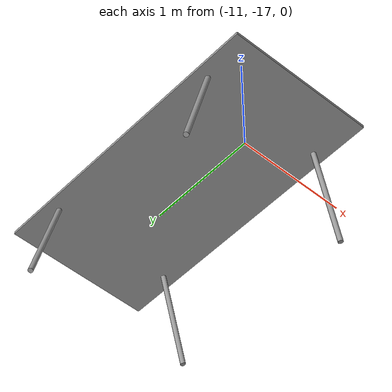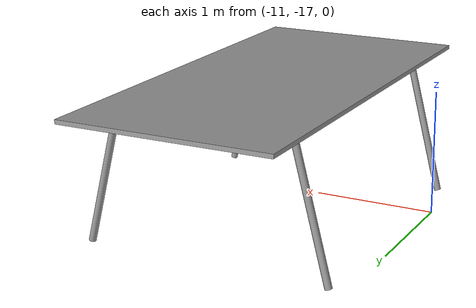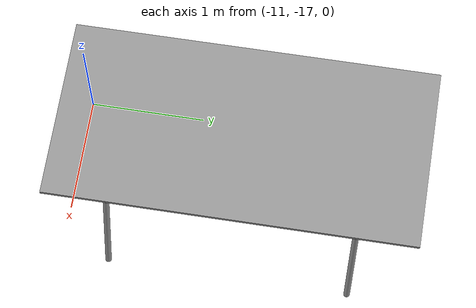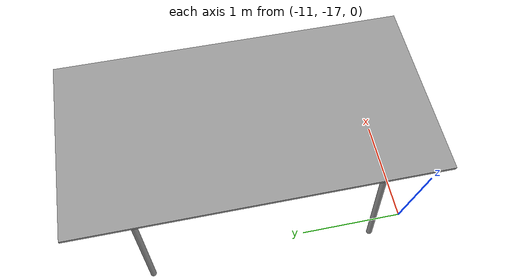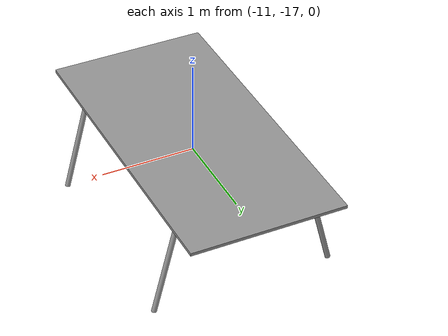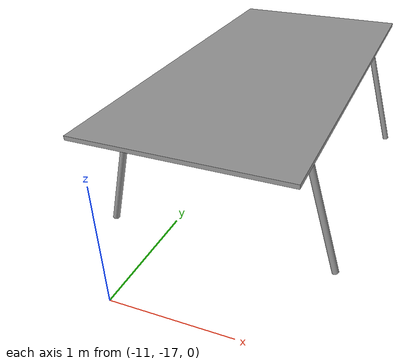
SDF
<?xml version='1.0'?>
<sdf version='1.7'>
  <model name='WorkBench2'>
    <link name='link_2'>
      <inertial>
        <mass>1</mass>
        <inertia>
          <ixx>0.166667</ixx>
          <ixy>0</ixy>
          <ixz>0</ixz>
          <iyy>0.166667</iyy>
          <iyz>0</iyz>
          <izz>0.166667</izz>
        </inertia>
        <pose>0 0 0 0 -0 0</pose>
      </inertial>
      <pose>-10.3224 -15.5367 1.36369 0 -0 0</pose>
      <gravity>1</gravity>
      <self_collide>0</self_collide>
      <kinematic>0</kinematic>
      <enable_wind>0</enable_wind>
      <visual name='visual'>
        <pose>0 0 0 0 -0 0</pose>
        <geometry>
          <box>
            <size>1.5 3 0.03</size>
          </box>
        </geometry>
        <material>
          <lighting>1</lighting>
          <script>
            <uri>file://media/materials/scripts/gazebo.material</uri>
            <name>Gazebo/Grey</name>
          </script>
          <shader type='pixel'>
            <normal_map>__default__</normal_map>
          </shader>
          <ambient>0.6 0.6 0.6 1</ambient>
          <diffuse>0.7 0.7 0.7 1</diffuse>
          <specular>0.01 0.01 0.01 1</specular>
          <emissive>0 0 0 1</emissive>
        </material>
        <transparency>0</transparency>
        <cast_shadows>1</cast_shadows>
      </visual>
      <collision name='collision'>
        <laser_retro>0</laser_retro>
        <max_contacts>10</max_contacts>
        <pose>0 0 0 0 -0 0</pose>
        <geometry>
          <box>
            <size>1.5 3 0.03</size>
          </box>
        </geometry>
        <surface>
          <friction>
            <ode>
              <mu>1</mu>
              <mu2>1</mu2>
              <fdir1>0 0 0</fdir1>
              <slip1>0</slip1>
              <slip2>0</slip2>
            </ode>
            <torsional>
              <coefficient>1</coefficient>
              <patch_radius>0</patch_radius>
              <surface_radius>0</surface_radius>
              <use_patch_radius>1</use_patch_radius>
              <ode>
                <slip>0</slip>
              </ode>
            </torsional>
          </friction>
          <bounce>
            <restitution_coefficient>0</restitution_coefficient>
            <threshold>1e+06</threshold>
          </bounce>
          <contact>
            <collide_without_contact>0</collide_without_contact>
            <collide_without_contact_bitmask>1</collide_without_contact_bitmask>
            <collide_bitmask>1</collide_bitmask>
            <ode>
              <soft_cfm>0</soft_cfm>
              <soft_erp>0.2</soft_erp>
              <kp>1e+13</kp>
              <kd>1</kd>
              <max_vel>0.01</max_vel>
              <min_depth>0</min_depth>
            </ode>
            <bullet>
              <split_impulse>1</split_impulse>
              <split_impulse_penetration_threshold>-0.01</split_impulse_penetration_threshold>
              <soft_cfm>0</soft_cfm>
              <soft_erp>0.2</soft_erp>
              <kp>1e+13</kp>
              <kd>1</kd>
            </bullet>
          </contact>
        </surface>
      </collision>
    </link>
    <link name='link_3'>
      <inertial>
        <mass>1</mass>
        <inertia>
          <ixx>0.145833</ixx>
          <ixy>0</ixy>
          <ixz>0</ixz>
          <iyy>0.145833</iyy>
          <iyz>0</iyz>
          <izz>0.125</izz>
        </inertia>
        <pose>0 0 0 0 -0 0</pose>
      </inertial>
      <pose>-11.0724 -16.5367 0.863691 0 -0 0</pose>
      <gravity>1</gravity>
      <self_collide>0</self_collide>
      <kinematic>0</kinematic>
      <enable_wind>0</enable_wind>
      <visual name='visual'>
        <pose>0 0 0 0 0.25 0</pose>
        <geometry>
          <cylinder>
            <radius>0.025</radius>
            <length>1</length>
          </cylinder>
        </geometry>
        <material>
          <lighting>1</lighting>
          <script>
            <uri>file://media/materials/scripts/gazebo.material</uri>
            <name>Gazebo/Grey</name>
          </script>
          <shader type='pixel'>
            <normal_map>__default__</normal_map>
          </shader>
          <ambient>0.6 0.6 0.6 1</ambient>
          <diffuse>0.7 0.7 0.7 1</diffuse>
          <specular>0.01 0.01 0.01 1</specular>
          <emissive>0 0 0 1</emissive>
        </material>
        <transparency>0</transparency>
        <cast_shadows>1</cast_shadows>
      </visual>
      <collision name='collision'>
        <laser_retro>0</laser_retro>
        <max_contacts>10</max_contacts>
        <pose>0 0 0 0 0.25 0</pose>
        <geometry>
          <cylinder>
            <radius>0.025</radius>
            <length>1</length>
          </cylinder>
        </geometry>
        <surface>
          <friction>
            <ode>
              <mu>1</mu>
              <mu2>1</mu2>
              <fdir1>0 0 0</fdir1>
              <slip1>0</slip1>
              <slip2>0</slip2>
            </ode>
            <torsional>
              <coefficient>1</coefficient>
              <patch_radius>0</patch_radius>
              <surface_radius>0</surface_radius>
              <use_patch_radius>1</use_patch_radius>
              <ode>
                <slip>0</slip>
              </ode>
            </torsional>
          </friction>
          <bounce>
            <restitution_coefficient>0</restitution_coefficient>
            <threshold>1e+06</threshold>
          </bounce>
          <contact>
            <collide_without_contact>0</collide_without_contact>
            <collide_without_contact_bitmask>1</collide_without_contact_bitmask>
            <collide_bitmask>1</collide_bitmask>
            <ode>
              <soft_cfm>0</soft_cfm>
              <soft_erp>0.2</soft_erp>
              <kp>1e+13</kp>
              <kd>1</kd>
              <max_vel>0.01</max_vel>
              <min_depth>0</min_depth>
            </ode>
            <bullet>
              <split_impulse>1</split_impulse>
              <split_impulse_penetration_threshold>-0.01</split_impulse_penetration_threshold>
              <soft_cfm>0</soft_cfm>
              <soft_erp>0.2</soft_erp>
              <kp>1e+13</kp>
              <kd>1</kd>
            </bullet>
          </contact>
        </surface>
      </collision>
    </link>
    <link name='link_3_clone'>
      <inertial>
        <mass>1</mass>
        <inertia>
          <ixx>0.145833</ixx>
          <ixy>0</ixy>
          <ixz>0</ixz>
          <iyy>0.145833</iyy>
          <iyz>0</iyz>
          <izz>0.125</izz>
        </inertia>
        <pose>0 0 0 0 -0 0</pose>
      </inertial>
      <pose>-9.5724 -16.5367 0.863691 0 -0 0</pose>
      <gravity>1</gravity>
      <self_collide>0</self_collide>
      <kinematic>0</kinematic>
      <enable_wind>0</enable_wind>
      <visual name='visual'>
        <pose>0 0 0 0 -0.25 0</pose>
        <geometry>
          <cylinder>
            <radius>0.025</radius>
            <length>1</length>
          </cylinder>
        </geometry>
        <material>
          <lighting>1</lighting>
          <script>
            <uri>file://media/materials/scripts/gazebo.material</uri>
            <name>Gazebo/Grey</name>
          </script>
          <shader type='pixel'>
            <normal_map>__default__</normal_map>
          </shader>
          <ambient>0.6 0.6 0.6 1</ambient>
          <diffuse>0.7 0.7 0.7 1</diffuse>
          <specular>0.01 0.01 0.01 1</specular>
          <emissive>0 0 0 1</emissive>
        </material>
        <transparency>0</transparency>
        <cast_shadows>1</cast_shadows>
      </visual>
      <collision name='collision'>
        <laser_retro>0</laser_retro>
        <max_contacts>10</max_contacts>
        <pose>0 0 0 0 -0.25 0</pose>
        <geometry>
          <cylinder>
            <radius>0.025</radius>
            <length>1</length>
          </cylinder>
        </geometry>
        <surface>
          <friction>
            <ode>
              <mu>1</mu>
              <mu2>1</mu2>
              <fdir1>0 0 0</fdir1>
              <slip1>0</slip1>
              <slip2>0</slip2>
            </ode>
            <torsional>
              <coefficient>1</coefficient>
              <patch_radius>0</patch_radius>
              <surface_radius>0</surface_radius>
              <use_patch_radius>1</use_patch_radius>
              <ode>
                <slip>0</slip>
              </ode>
            </torsional>
          </friction>
          <bounce>
            <restitution_coefficient>0</restitution_coefficient>
            <threshold>1e+06</threshold>
          </bounce>
          <contact>
            <collide_without_contact>0</collide_without_contact>
            <collide_without_contact_bitmask>1</collide_without_contact_bitmask>
            <collide_bitmask>1</collide_bitmask>
            <ode>
              <soft_cfm>0</soft_cfm>
              <soft_erp>0.2</soft_erp>
              <kp>1e+13</kp>
              <kd>1</kd>
              <max_vel>0.01</max_vel>
              <min_depth>0</min_depth>
            </ode>
            <bullet>
              <split_impulse>1</split_impulse>
              <split_impulse_penetration_threshold>-0.01</split_impulse_penetration_threshold>
              <soft_cfm>0</soft_cfm>
              <soft_erp>0.2</soft_erp>
              <kp>1e+13</kp>
              <kd>1</kd>
            </bullet>
          </contact>
        </surface>
      </collision>
    </link>
    <link name='link_3_clone_clone'>
      <inertial>
        <mass>1</mass>
        <inertia>
          <ixx>0.145833</ixx>
          <ixy>0</ixy>
          <ixz>0</ixz>
          <iyy>0.145833</iyy>
          <iyz>0</iyz>
          <izz>0.125</izz>
        </inertia>
        <pose>0 0 0 0 -0 0</pose>
      </inertial>
      <pose>-11.0724 -14.5367 0.863691 0 -0 0</pose>
      <gravity>1</gravity>
      <self_collide>0</self_collide>
      <kinematic>0</kinematic>
      <enable_wind>0</enable_wind>
      <visual name='visual'>
        <pose>0 0 0 0 0.25 0</pose>
        <geometry>
          <cylinder>
            <radius>0.025</radius>
            <length>1</length>
          </cylinder>
        </geometry>
        <material>
          <lighting>1</lighting>
          <script>
            <uri>file://media/materials/scripts/gazebo.material</uri>
            <name>Gazebo/Grey</name>
          </script>
          <shader type='pixel'>
            <normal_map>__default__</normal_map>
          </shader>
          <ambient>0.6 0.6 0.6 1</ambient>
          <diffuse>0.7 0.7 0.7 1</diffuse>
          <specular>0.01 0.01 0.01 1</specular>
          <emissive>0 0 0 1</emissive>
        </material>
        <transparency>0</transparency>
        <cast_shadows>1</cast_shadows>
      </visual>
      <collision name='collision'>
        <laser_retro>0</laser_retro>
        <max_contacts>10</max_contacts>
        <pose>0 0 0 0 0.25 0</pose>
        <geometry>
          <cylinder>
            <radius>0.025</radius>
            <length>1</length>
          </cylinder>
        </geometry>
        <surface>
          <friction>
            <ode>
              <mu>1</mu>
              <mu2>1</mu2>
              <fdir1>0 0 0</fdir1>
              <slip1>0</slip1>
              <slip2>0</slip2>
            </ode>
            <torsional>
              <coefficient>1</coefficient>
              <patch_radius>0</patch_radius>
              <surface_radius>0</surface_radius>
              <use_patch_radius>1</use_patch_radius>
              <ode>
                <slip>0</slip>
              </ode>
            </torsional>
          </friction>
          <bounce>
            <restitution_coefficient>0</restitution_coefficient>
            <threshold>1e+06</threshold>
          </bounce>
          <contact>
            <collide_without_contact>0</collide_without_contact>
            <collide_without_contact_bitmask>1</collide_without_contact_bitmask>
            <collide_bitmask>1</collide_bitmask>
            <ode>
              <soft_cfm>0</soft_cfm>
              <soft_erp>0.2</soft_erp>
              <kp>1e+13</kp>
              <kd>1</kd>
              <max_vel>0.01</max_vel>
              <min_depth>0</min_depth>
            </ode>
            <bullet>
              <split_impulse>1</split_impulse>
              <split_impulse_penetration_threshold>-0.01</split_impulse_penetration_threshold>
              <soft_cfm>0</soft_cfm>
              <soft_erp>0.2</soft_erp>
              <kp>1e+13</kp>
              <kd>1</kd>
            </bullet>
          </contact>
        </surface>
      </collision>
    </link>
    <link name='link_3_clone_clone_clone'>
      <inertial>
        <mass>1</mass>
        <inertia>
          <ixx>0.145833</ixx>
          <ixy>0</ixy>
          <ixz>0</ixz>
          <iyy>0.145833</iyy>
          <iyz>0</iyz>
          <izz>0.125</izz>
        </inertia>
        <pose>0 0 0 0 -0 0</pose>
      </inertial>
      <pose>-9.5724 -14.5367 0.863691 0 -0 0</pose>
      <gravity>1</gravity>
      <self_collide>0</self_collide>
      <kinematic>0</kinematic>
      <enable_wind>0</enable_wind>
      <visual name='visual'>
        <pose>0 0 0 0 -0.25 0</pose>
        <geometry>
          <cylinder>
            <radius>0.025</radius>
            <length>1</length>
          </cylinder>
        </geometry>
        <material>
          <lighting>1</lighting>
          <script>
            <uri>file://media/materials/scripts/gazebo.material</uri>
            <name>Gazebo/Grey</name>
          </script>
          <shader type='pixel'>
            <normal_map>__default__</normal_map>
          </shader>
          <ambient>0.6 0.6 0.6 1</ambient>
          <diffuse>0.7 0.7 0.7 1</diffuse>
          <specular>0.01 0.01 0.01 1</specular>
          <emissive>0 0 0 1</emissive>
        </material>
        <transparency>0</transparency>
        <cast_shadows>1</cast_shadows>
      </visual>
      <collision name='collision'>
        <laser_retro>0</laser_retro>
        <max_contacts>10</max_contacts>
        <pose>0 0 0 0 -0.25 0</pose>
        <geometry>
          <cylinder>
            <radius>0.025</radius>
            <length>1</length>
          </cylinder>
        </geometry>
        <surface>
          <friction>
            <ode>
              <mu>1</mu>
              <mu2>1</mu2>
              <fdir1>0 0 0</fdir1>
              <slip1>0</slip1>
              <slip2>0</slip2>
            </ode>
            <torsional>
              <coefficient>1</coefficient>
              <patch_radius>0</patch_radius>
              <surface_radius>0</surface_radius>
              <use_patch_radius>1</use_patch_radius>
              <ode>
                <slip>0</slip>
              </ode>
            </torsional>
          </friction>
          <bounce>
            <restitution_coefficient>0</restitution_coefficient>
            <threshold>1e+06</threshold>
          </bounce>
          <contact>
            <collide_without_contact>0</collide_without_contact>
            <collide_without_contact_bitmask>1</collide_without_contact_bitmask>
            <collide_bitmask>1</collide_bitmask>
            <ode>
              <soft_cfm>0</soft_cfm>
              <soft_erp>0.2</soft_erp>
              <kp>1e+13</kp>
              <kd>1</kd>
              <max_vel>0.01</max_vel>
              <min_depth>0</min_depth>
            </ode>
            <bullet>
              <split_impulse>1</split_impulse>
              <split_impulse_penetration_threshold>-0.01</split_impulse_penetration_threshold>
              <soft_cfm>0</soft_cfm>
              <soft_erp>0.2</soft_erp>
              <kp>1e+13</kp>
              <kd>1</kd>
            </bullet>
          </contact>
        </surface>
      </collision>
    </link>
    <joint name='link_2_JOINT_4' type='fixed'>
      <parent>link_2</parent>
      <child>link_3</child>
      <pose>0 0 0 0 -0 0</pose>
      <physics>
        <ode>
          <limit>
            <cfm>0</cfm>
            <erp>0.2</erp>
          </limit>
          <suspension>
            <cfm>0</cfm>
            <erp>0.2</erp>
          </suspension>
        </ode>
      </physics>
    </joint>
    <joint name='link_2_JOINT_5' type='fixed'>
      <parent>link_2</parent>
      <child>link_3_clone</child>
      <pose>0 0 0 0 -0 0</pose>
      <physics>
        <ode>
          <limit>
            <cfm>0</cfm>
            <erp>0.2</erp>
          </limit>
          <suspension>
            <cfm>0</cfm>
            <erp>0.2</erp>
          </suspension>
        </ode>
      </physics>
    </joint>
    <joint name='link_2_JOINT_6' type='fixed'>
      <parent>link_2</parent>
      <child>link_3_clone_clone</child>
      <pose>0 0 0 0 -0 0</pose>
      <physics>
        <ode>
          <limit>
            <cfm>0</cfm>
            <erp>0.2</erp>
          </limit>
          <suspension>
            <cfm>0</cfm>
            <erp>0.2</erp>
          </suspension>
        </ode>
      </physics>
    </joint>
    <joint name='link_2_JOINT_7' type='fixed'>
      <parent>link_2</parent>
      <child>link_3_clone_clone_clone</child>
      <pose>0 0 0 0 -0 0</pose>
      <physics>
        <ode>
          <limit>
            <cfm>0</cfm>
            <erp>0.2</erp>
          </limit>
          <suspension>
            <cfm>0</cfm>
            <erp>0.2</erp>
          </suspension>
        </ode>
      </physics>
    </joint>
    <static>0</static>
    <allow_auto_disable>1</allow_auto_disable>
  </model>
</sdf>
